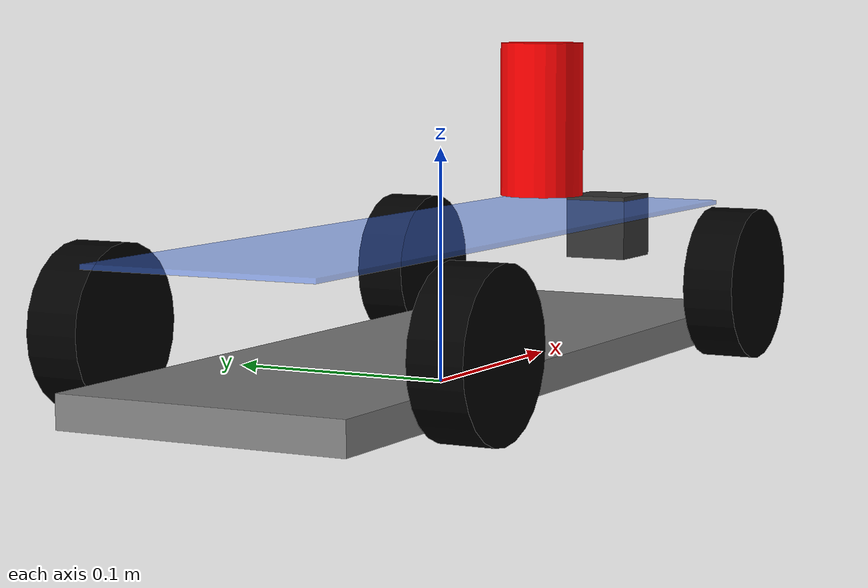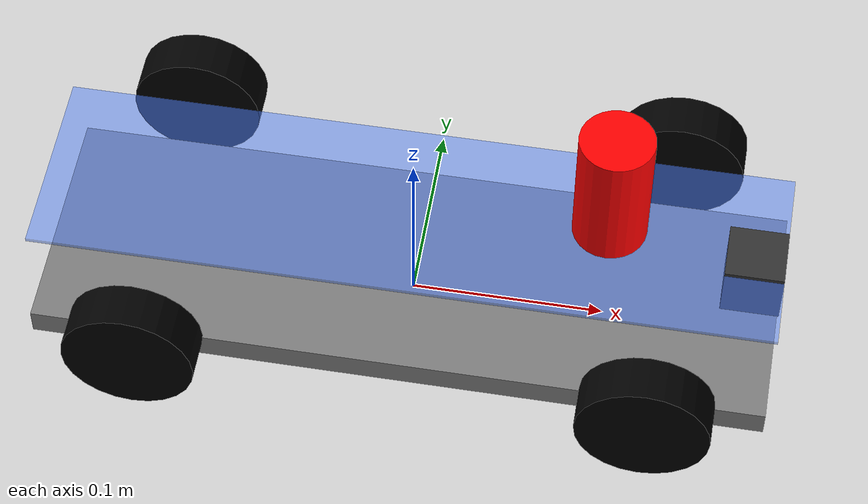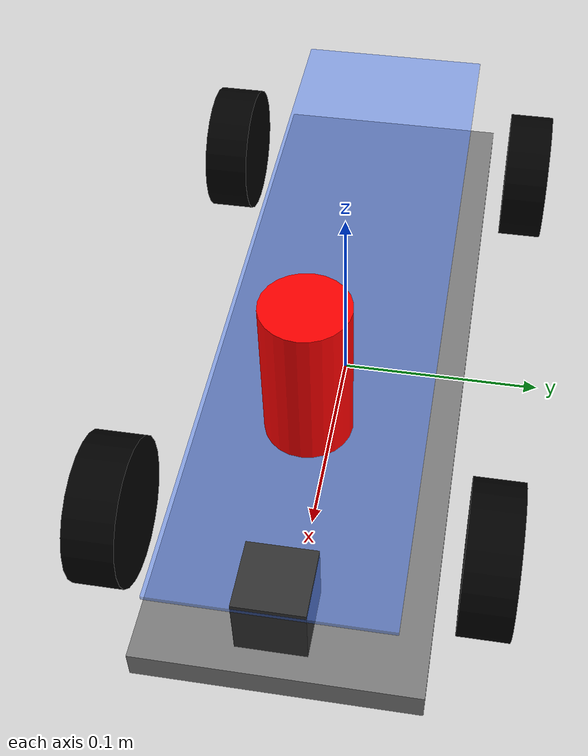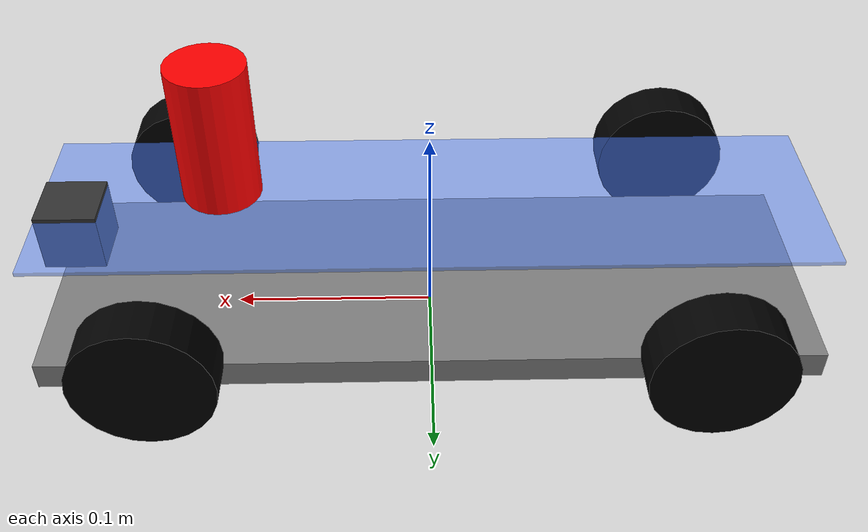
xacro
<?xml version="1.0"?>
<robot name="f1tenth_car" xmlns:xacro="http://ros.org/wiki/xacro">

  <!-- Propriedades (dimensões) em metros -->
  <xacro:property name="wheel_radius" value="0.034"/>       <!-- 3.4 cm -->
  <xacro:property name="wheel_width"  value="0.023"/>       <!-- 2.3 cm -->
  <xacro:property name="half_wheelbase" value="0.13"/>      <!-- L total = 0.26 m -->
  <xacro:property name="half_track" value="0.0835"/>        <!-- ~16.7 cm / 2 -->
  <xacro:property name="chassis_length" value="0.38"/>      <!-- 38 cm -->
  <xacro:property name="chassis_width"  value="0.125"/>     <!-- 12.5 cm -->
  <xacro:property name="chassis_thickness" value="0.014"/>  <!-- 1.4 cm -->
  <xacro:property name="top_chassis_width" value="0.101"/>  <!-- 10.1 cm -->
  <xacro:property name="top_chassis_thickness" value="0.002"/> <!-- 0.2 cm -->
  <xacro:property name="ground_clearance" value="0.003"/>   <!-- 0.3 cm -->
  <xacro:property name="top_chassis_height" value="0.069"/> <!-- 6.9 cm -->
  <xacro:property name="lidar_diameter" value="0.038"/>     <!-- 3.8 cm -->
  <xacro:property name="lidar_height" value="0.07"/>        <!-- 7 cm -->
  <xacro:property name="lidar_offset_x" value="0.10"/>      <!-- ~0.09 m atrás da dianteira -->
  <xacro:property name="lidar_base_z" value="0.073"/>       <!-- base do LiDAR -->

  <!-- ===== Novo frame raiz 2D ===== -->
  <link name="base_footprint"/>
  <joint name="base_footprint_to_base_link" type="fixed">
    <parent link="base_footprint"/>
    <child  link="base_link"/>
    <origin xyz="0 0 0" rpy="0 0 0"/>
  </joint>

  <!-- Link principal do chassi (base_link) -->
  <link name="base_link">
    <!-- Geometria visual: chassi inferior (base) -->
    <visual>
      <origin xyz="0 0 ${ground_clearance + chassis_thickness/2}" rpy="0 0 0"/>
      <geometry>
        <box size="${chassis_length} ${chassis_width} ${chassis_thickness}"/>
      </geometry>
      <material name="Gray">
        <color rgba="0.5 0.5 0.5 1.0"/>
      </material>
    </visual>
    <!-- Geometria visual: chassi superior (placa superior) -->
    <visual>
      <origin xyz="0 0 ${top_chassis_height - ground_clearance - top_chassis_thickness/2}" rpy="0 0 0"/>
      <geometry>
        <box size="${chassis_length} ${top_chassis_width} ${top_chassis_thickness}"/>
      </geometry>
      <material name="TransparentBlue">
        <color rgba="0.3 0.5 1.0 0.5"/>
      </material>
    </visual>
    <!-- Geometria de colisão (caixa englobante) -->
    <collision>
      <origin xyz="0 0 ${ground_clearance + (top_chassis_height)/2}" rpy="0 0 0"/>
      <geometry>
        <box size="${chassis_length} ${chassis_width} ${top_chassis_height}"/>
      </geometry>
    </collision>
    <!-- Inércia aproximada do chassi (massa ~2 kg) -->
    <inertial>
      <mass value="2.0"/>
      <origin xyz="0 0 ${top_chassis_height/2}" rpy="0 0 0"/>
      <inertia ixx="0.0034" ixy="0.0" ixz="0.0" iyy="0.025" iyz="0.0" izz="0.027"/>
    </inertial>
  </link>

  <!-- ========== MANGAS DE EIXO (esterço dianteiro) ========== -->
  <link name="steer_front_left_link">
    <inertial>
      <mass value="0.02"/>
      <origin xyz="0 0 0"/>
      <inertia ixx="1e-4" ixy="0" ixz="0" iyy="1e-4" iyz="0" izz="1e-4"/>
    </inertial>
  </link>
  <joint name="joint_steer_front_left" type="revolute">
    <parent link="base_link"/>
    <child link="steer_front_left_link"/>
    <origin xyz="${half_wheelbase} ${half_track} ${wheel_radius}" rpy="0 0 0"/>
    <axis xyz="0 0 1"/>
    <limit effort="5.0" lower="-0.7" upper="0.7" velocity="2.0"/>
  </joint>

  <link name="steer_front_right_link">
    <inertial>
      <mass value="0.02"/>
      <origin xyz="0 0 0"/>
      <inertia ixx="1e-4" ixy="0" ixz="0" iyy="1e-4" iyz="0" izz="1e-4"/>
    </inertial>
  </link>
  <joint name="joint_steer_front_right" type="revolute">
    <parent link="base_link"/>
    <child link="steer_front_right_link"/>
    <origin xyz="${half_wheelbase} -${half_track} ${wheel_radius}" rpy="0 0 0"/>
    <axis xyz="0 0 1"/>
    <limit effort="5.0" lower="-0.7" upper="0.7" velocity="2.0"/>
  </joint>

  <!-- ========== Rodas ========== -->
  <!-- Dianteira Esquerda -->
  <link name="wheel_front_left">
    <visual>
      <origin xyz="0 0 0" rpy="1.5708 0 0"/>
      <geometry>
        <cylinder radius="${wheel_radius}" length="${wheel_width}"/>
      </geometry>
      <material name="Black">
        <color rgba="0.0 0.0 0.0 1.0"/>
      </material>
    </visual>
    <collision>
      <origin xyz="0 0 0" rpy="1.5708 0 0"/>
      <geometry>
        <cylinder radius="${wheel_radius}" length="${wheel_width}"/>
      </geometry>
    </collision>
    <inertial>
      <mass value="0.05"/>
      <origin xyz="0 0 0" rpy="0 0 0"/>
      <inertia ixx="1e-4" ixy="0" ixz="0" iyy="1e-4" iyz="0" izz="1e-4"/>
    </inertial>
  </link>
  <joint name="joint_wheel_front_left" type="continuous">
    <parent link="steer_front_left_link"/>
    <child link="wheel_front_left"/>
    <origin xyz="0 0 0" rpy="0 0 0"/>
    <axis xyz="0 1 0"/>
  </joint>

  <!-- Dianteira Direita -->
  <link name="wheel_front_right">
    <visual>
      <origin xyz="0 0 0" rpy="1.5708 0 0"/>
      <geometry>
        <cylinder radius="${wheel_radius}" length="${wheel_width}"/>
      </geometry>
      <material name="Black"/>
    </visual>
    <collision>
      <origin xyz="0 0 0" rpy="1.5708 0 0"/>
      <geometry>
        <cylinder radius="${wheel_radius}" length="${wheel_width}"/>
      </geometry>
    </collision>
    <inertial>
      <mass value="0.05"/>
      <origin xyz="0 0 0" rpy="0 0 0"/>
      <inertia ixx="1e-4" ixy="0" ixz="0" iyy="1e-4" iyz="0" izz="1e-4"/>
    </inertial>
  </link>
  <joint name="joint_wheel_front_right" type="continuous">
    <parent link="steer_front_right_link"/>
    <child link="wheel_front_right"/>
    <origin xyz="0 0 0" rpy="0 0 0"/>
    <axis xyz="0 1 0"/>
  </joint>

  <!-- Traseira Esquerda -->
  <link name="wheel_rear_left">
    <visual>
      <origin xyz="0 0 0" rpy="1.5708 0 0"/>
      <geometry>
        <cylinder radius="${wheel_radius}" length="${wheel_width}"/>
      </geometry>
      <material name="Black"/>
    </visual>
    <collision>
      <origin xyz="0 0 0" rpy="1.5708 0 0"/>
      <geometry>
        <cylinder radius="${wheel_radius}" length="${wheel_width}"/>
      </geometry>
    </collision>
    <inertial>
      <mass value="0.05"/>
      <origin xyz="0 0 0" rpy="0 0 0"/>
      <inertia ixx="1e-4" ixy="0" ixz="0" iyy="1e-4" iyz="0" izz="1e-4"/>
    </inertial>
  </link>
  <joint name="joint_wheel_rear_left" type="continuous">
    <parent link="base_link"/>
    <child link="wheel_rear_left"/>
    <origin xyz="-${half_wheelbase} ${half_track} ${wheel_radius}" rpy="0 0 0"/>
    <axis xyz="0 1 0"/>
  </joint>

  <!-- Traseira Direita -->
  <link name="wheel_rear_right">
    <visual>
      <origin xyz="0 0 0" rpy="1.5708 0 0"/>
      <geometry>
        <cylinder radius="${wheel_radius}" length="${wheel_width}"/>
      </geometry>
      <material name="Black"/>
    </visual>
    <collision>
      <origin xyz="0 0 0" rpy="1.5708 0 0"/>
      <geometry>
        <cylinder radius="${wheel_radius}" length="${wheel_width}"/>
      </geometry>
    </collision>
    <inertial>
      <mass value="0.05"/>
      <origin xyz="0 0 0" rpy="0 0 0"/>
      <inertia ixx="1e-4" ixy="0" ixz="0" iyy="1e-4" iyz="0" izz="1e-4"/>
    </inertial>
  </link>
  <joint name="joint_wheel_rear_right" type="continuous">
    <parent link="base_link"/>
    <child link="wheel_rear_right"/>
    <origin xyz="-${half_wheelbase} -${half_track} ${wheel_radius}" rpy="0 0 0"/>
    <axis xyz="0 1 0"/>
  </joint>

  <!-- GAZEBO PLUGINS FOR THE SIMULATION -->

  <!-- Link do LiDAR -->
  <link name="laser_link">
    <visual>
      <origin xyz="0 0 ${lidar_height/2}" rpy="0 0 0"/>
      <geometry>
        <cylinder radius="${lidar_diameter/2}" length="${lidar_height}"/>
      </geometry>
      <material name="Red">
        <color rgba="1.0 0.0 0.0 1.0"/>
      </material>
    </visual>
    <collision>
      <origin xyz="0 0 ${lidar_height/2}" rpy="0 0 0"/>
      <geometry>
        <cylinder radius="${lidar_diameter/2}" length="${lidar_height}"/>
      </geometry>
    </collision>
    <inertial>
      <mass value="0.1"/>
      <origin xyz="0 0 ${lidar_height/2}" rpy="0 0 0"/>
      <inertia ixx="1e-4" ixy="0" ixz="0" iyy="1e-4" iyz="0" izz="1e-4"/>
    </inertial>
  </link>
  <joint name="joint_laser" type="fixed">
    <parent link="base_link"/>
    <child link="laser_link"/>
    <origin xyz="${lidar_offset_x} 0 ${lidar_base_z}" rpy="0 0 0"/>
  </joint>

  <!-- Link da IMU -->
  <link name="imu_link">
    <inertial>
      <mass value="0.01"/>
      <origin xyz="0 0 0" rpy="0 0 0"/>
      <inertia ixx="1e-5" ixy="0" ixz="0" iyy="1e-5" iyz="0" izz="1e-5"/>
    </inertial>
  </link>
  <joint name="joint_imu" type="fixed">
    <parent link="base_link"/>
    <child link="imu_link"/>
    <origin xyz="0 0 ${top_chassis_height/2}" rpy="0 0 0"/>

  </joint>

  <!-- ========== RGB-D CAMERA (para RTAB-MAP) ========== -->
  <link name="front_camera_link">
    <visual>
      <origin xyz="0 0 0" rpy="0 0 0"/>
      <geometry>
        <box size="0.03 0.03 0.03"/>
      </geometry>
      <material name="DarkGray">
        <color rgba="0.2 0.2 0.2 1.0"/>
      </material>
    </visual>
    <inertial>
      <mass value="0.02"/>
      <origin xyz="0 0 0" rpy="0 0 0"/>
      <inertia ixx="1e-5" ixy="0" ixz="0" iyy="1e-5" iyz="0" izz="1e-5"/>
    </inertial>
  </link>

  <joint name="joint_front_camera" type="fixed">
    <parent link="base_link"/>
    <child link="front_camera_link"/>
    <!-- Movida mais à frente do LIDAR -->
    <origin xyz="${lidar_offset_x + 0.075} 0 ${lidar_base_z - 0.02}" rpy="0 0 0"/>
  </joint>

  <!-- ======== GAZEBO: SENSOR LiDAR NO laser_link (publica /scan) ======== -->
  <gazebo reference="laser_link">
    <sensor name="lidar_sensor" type="ray">
      <always_on>true</always_on>
      <update_rate>20</update_rate>
      <visualize>false</visualize>

      <!-- Geometria do feixe -->
      <ray>
        <scan>
          <horizontal>
            <samples>720</samples>            <!-- ~0,5° por feixe -->
            <resolution>1</resolution>
            <min_angle>-3.14159</min_angle>
            <max_angle> 3.14159</max_angle>
          </horizontal>
        </scan>
        <range>
          <min>0.05</min>
          <max>30.0</max>
          <resolution>0.01</resolution>
        </range>
        <noise>
          <type>gaussian</type>
          <mean>0.0</mean>
          <stddev>0.01</stddev>
        </noise>
      </ray>

      <!-- Plugin ROS 2 para publicar LaserScan -->
      <plugin name="gazebo_ros_laser" filename="libgazebo_ros_ray_sensor.so">
        <ros>
          <!-- publica diretamente em /scan -->
          <remapping>~/out:=/scan</remapping>
        </ros>
        <output_type>sensor_msgs/LaserScan</output_type>
        <frame_name>laser_link</frame_name>
      </plugin>
    </sensor>
  </gazebo>

  <!-- ======== GAZEBO: SENSOR IMU NO imu_link ======== -->
  <gazebo reference="imu_link">
    <sensor name="imu_sensor" type="imu">
      <always_on>true</always_on>
      <update_rate>100</update_rate>
      <visualize>false</visualize>

      <!-- Plugin ROS 2 (Gazebo Classic) -->
      <plugin name="imu_plugin" filename="libgazebo_ros_imu_sensor.so">
        <ros>
          <!-- publica em /imu/data -->
          <remapping>~/out:=/imu/data</remapping>
        </ros>
        <frame_name>imu_link</frame_name>
      </plugin>

      <!-- Ruído realista (ajuste se quiser mais “limpo”) -->
      <imu>
        <angular_velocity>
          <x>
            <noise type="gaussian">
              <mean>0.0</mean><stddev>0.001</stddev>
              <bias_mean>0.0</bias_mean><bias_stddev>0.0002</bias_stddev>
            </noise>
          </x>
          <y>
            <noise type="gaussian">
              <mean>0.0</mean><stddev>0.001</stddev>
              <bias_mean>0.0</bias_mean><bias_stddev>0.0002</bias_stddev>
            </noise>
          </y>
          <z>
            <noise type="gaussian">
              <mean>0.0</mean><stddev>0.001</stddev>
              <bias_mean>0.0</bias_mean><bias_stddev>0.0002</bias_stddev>
            </noise>
          </z>
        </angular_velocity>
        <linear_acceleration>
          <x>
            <noise type="gaussian">
              <mean>0.0</mean><stddev>0.1</stddev>
              <bias_mean>0.0</bias_mean><bias_stddev>0.02</bias_stddev>
            </noise>
          </x>
          <y>
            <noise type="gaussian">
              <mean>0.0</mean><stddev>0.1</stddev>
              <bias_mean>0.0</bias_mean><bias_stddev>0.02</bias_stddev>
            </noise>
          </y>
          <z>
            <noise type="gaussian">
              <mean>0.0</mean><stddev>0.1</stddev>
              <bias_mean>0.0</bias_mean><bias_stddev>0.02</bias_stddev>
            </noise>
          </z>
        </linear_acceleration>
      </imu>
    </sensor>
  </gazebo>

<!-- ======== RGB-D CAMERA (Gazebo Classic + ROS 2 Humble) ======== -->
<gazebo reference="front_camera_link">

  <!-- Câmera RGB -->
  <sensor name="rgb_camera" type="camera">
    <always_on>true</always_on>
    <update_rate>30</update_rate>
    <camera>
      <horizontal_fov>1.047</horizontal_fov>
      <image>
        <width>640</width>
        <height>480</height>
        <format>R8G8B8</format>
      </image>
      <clip>
        <near>0.02</near>
        <far>50.0</far>
      </clip>
    </camera>

    <plugin name="rgb_camera_plugin" filename="libgazebo_ros_camera.so">
      <ros>
        <remapping>~/image_raw:=/camera/rgb/image_raw</remapping>
        <remapping>~/camera_info:=/camera/rgb/camera_info</remapping>
      </ros>
      <frame_name>front_camera_link</frame_name>
    </plugin>
  </sensor>

  <!-- Câmera de profundidade (depth) -->
  <sensor name="depth_camera" type="depth">
    <always_on>true</always_on>
    <update_rate>30</update_rate>
    <camera>
      <horizontal_fov>1.047</horizontal_fov>
      <image>
        <width>640</width>
        <height>480</height>
        <format>FLOAT32</format> <!-- depth em metros -->
      </image>
      <clip>
        <near>0.05</near>
        <far>20.0</far>
      </clip>
    </camera>

    <plugin name="depth_camera_plugin" filename="libgazebo_ros_depth_camera.so">
      <ros>
        <remapping>~/image_raw:=/camera/depth/image_raw</remapping>
        <remapping>~/camera_info:=/camera/depth/camera_info</remapping>
      </ros>
      <frame_name>front_camera_link</frame_name>
    </plugin>
  </sensor>

</gazebo>

  <gazebo>
    <plugin name="f1tenth_ackermann" filename="libgazebo_ros_ackermann_drive.so">
      <ros>
        <remapping>cmd_vel:=/cmd_vel</remapping>
        <remapping>odom:=/odom</remapping>
      </ros>
      <update_rate>100.0</update_rate>
      <front_left_joint>joint_wheel_front_left</front_left_joint>
      <front_right_joint>joint_wheel_front_right</front_right_joint>
      <rear_left_joint>joint_wheel_rear_left</rear_left_joint>
      <rear_right_joint>joint_wheel_rear_right</rear_right_joint>
      <left_steering_joint>joint_steer_front_left</left_steering_joint>
      <right_steering_joint>joint_steer_front_right</right_steering_joint>
      <max_steer>0.698</max_steer>
      <max_speed>2.0</max_speed>
      <!-- ativa publicação de odom e TF -->
      <publish_odom>true</publish_odom>
      <publish_odom_tf>true</publish_odom_tf>
      <odometry_frame>odom</odometry_frame>
      <robot_base_frame>base_footprint</robot_base_frame>
    </plugin>
  </gazebo>

</robot>
